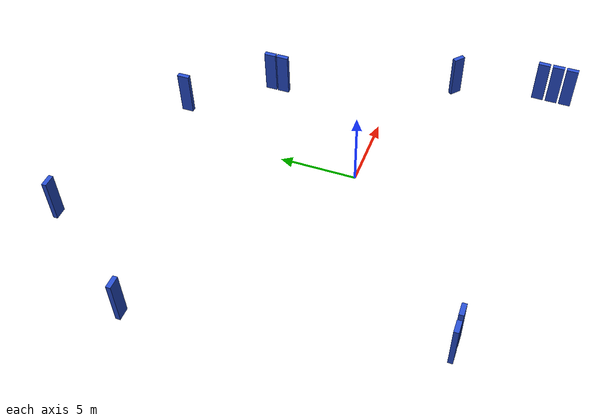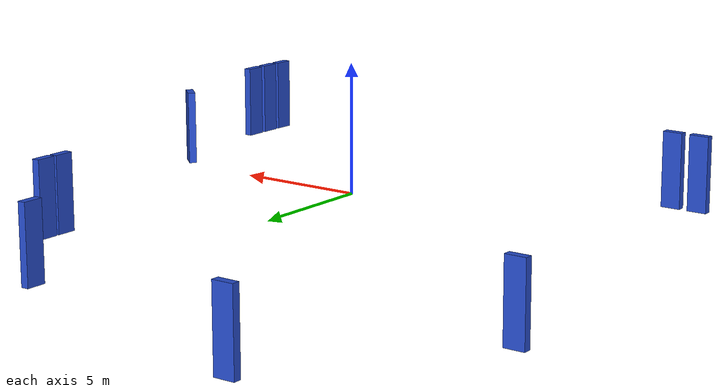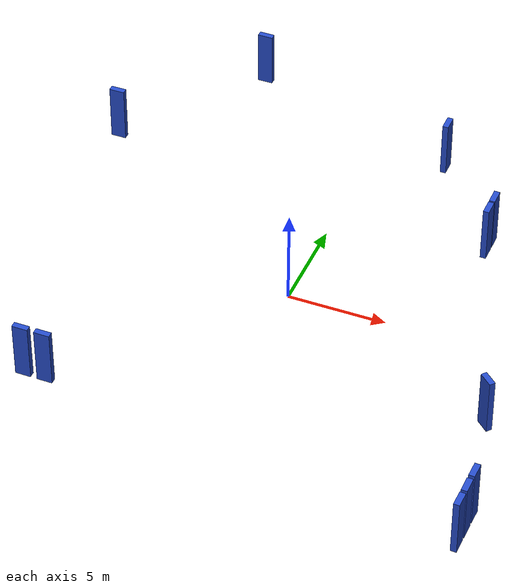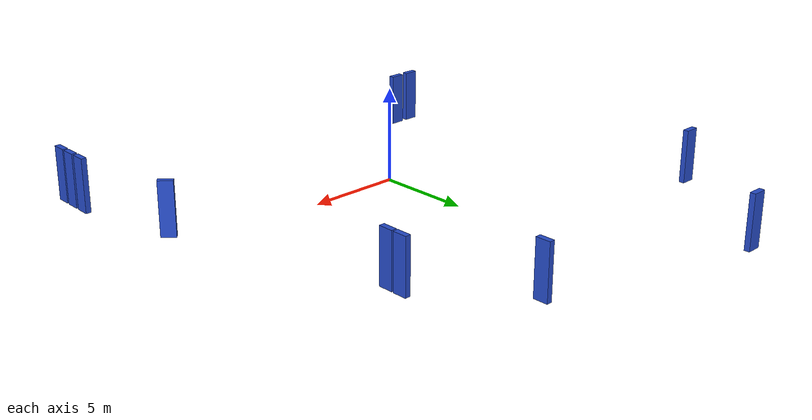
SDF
<sdf version="1.6">
 <world name="default">
  <model name="ground_plane">
   <static>1</static>
   <link name="link">
    <collision name="collision">
     <geometry><plane><normal>0 0 1</normal><size>100 100</size></plane></geometry>
     <surface>
      <contact><collide_bitmask>65535</collide_bitmask></contact>
      <friction><ode><mu>100</mu><mu2>50</mu2></ode></friction>
     </surface>
    </collision>
   </link>
  </model>
  <light name="sun" type="directional">
   <pose>0 0 10 0 -0 0</pose>
   <diffuse>0.8 0.8 0.8 1</diffuse>
   <specular>0.2 0.2 0.2 1</specular>
   <attenuation>
    <range>1000</range>
    <constant>0.9</constant>
    <linear>0.01</linear>
    <quadratic>0.001</quadratic>
   </attenuation>
   <direction>-0.5 0.1 -0.9</direction>
   <spot><inner_angle>0</inner_angle><outer_angle>0</outer_angle><falloff>0</falloff></spot>
  </light>
  <gravity>0 0 -9.8</gravity>
  <magnetic_field>6e-06 2.3e-05 -4.2e-05</magnetic_field>
  <atmosphere type="adiabatic"/>
  <physics type="ode">
   <max_step_size>0.001</max_step_size>
   <real_time_factor>1</real_time_factor>
   <real_time_update_rate>1000</real_time_update_rate>
  </physics>
  <scene><ambient>0.4 0.4 0.4 1</ambient><background>0.7 0.7 0.7 1</background><shadows>1</shadows></scene>
  <spherical_coordinates>
   <surface_model>EARTH_WGS84</surface_model>
   <latitude_deg>0</latitude_deg>
   <longitude_deg>0</longitude_deg>
   <elevation>0</elevation>
   <heading_deg>0</heading_deg>
  </spherical_coordinates>
  <model name="door_1">
   <static>1</static>
   <link name="chassis">
    <pose>0 0 0.5 0 -0 0</pose>
    <collision name="collision"><geometry><box><size>2 0.5 1</size></box></geometry></collision>
    <visual name="visual">
     <geometry><box><size>0.8 0.3 3</size></box></geometry>
     <material>
      <script><uri>file://media/materials/scripts/gazebo.material</uri><name>Gazebo/Blue</name></script>
     </material>
    </visual>
    <velocity_decay><linear>0</linear><angular>0</angular></velocity_decay>
   </link>
   <pose>-9.97173 -8.79552 0 0 -0 0</pose>
  </model>
  <model name="door_2">
   <static>1</static>
   <link name="chassis">
    <pose>0 0 0.5 0 -0 0</pose>
    <collision name="collision"><geometry><box><size>2 0.5 1</size></box></geometry></collision>
    <visual name="visual">
     <geometry><box><size>0.8 0.3 3</size></box></geometry>
     <material>
      <script><uri>file://media/materials/scripts/gazebo.material</uri><name>Gazebo/Blue</name></script>
     </material>
    </visual>
    <velocity_decay><linear>0</linear><angular>0</angular></velocity_decay>
   </link>
   <pose>-8.84263 -8.79272 0 0 -0 0</pose>
  </model>
  <model name="door_3">
   <static>1</static>
   <link name="chassis">
    <pose>0 0 0.5 0 -0 0</pose>
    <collision name="collision"><geometry><box><size>2 0.5 1</size></box></geometry></collision>
    <visual name="visual">
     <geometry><box><size>0.8 0.3 3</size></box></geometry>
     <material>
      <script><uri>file://media/materials/scripts/gazebo.material</uri><name>Gazebo/Blue</name></script>
     </material>
    </visual>
    <velocity_decay><linear>0</linear><angular>0</angular></velocity_decay>
   </link>
   <pose>-13.4092 9.3986 0 0 -0 0</pose>
  </model>
  <model name="door_4">
   <static>1</static>
   <link name="chassis">
    <pose>0 0 0.5 0 -0 0</pose>
    <collision name="collision"><geometry><box><size>2 0.5 1</size></box></geometry></collision>
    <visual name="visual">
     <geometry><box><size>0.8 0.3 3</size></box></geometry>
     <material>
      <script><uri>file://media/materials/scripts/gazebo.material</uri><name>Gazebo/Blue</name></script>
     </material>
    </visual>
    <velocity_decay><linear>0</linear><angular>0</angular></velocity_decay>
   </link>
   <pose>-8.08526 16.733 0 0 -0 0</pose>
  </model>
  <model name="door_5">
   <static>1</static>
   <link name="chassis">
    <pose>0 0 0.5 0 -0 0</pose>
    <collision name="collision"><geometry><box><size>2 0.5 1</size></box></geometry></collision>
    <visual name="visual">
     <geometry><box><size>0.8 0.3 3</size></box></geometry>
     <material>
      <script><uri>file://media/materials/scripts/gazebo.material</uri><name>Gazebo/Blue</name></script>
     </material>
    </visual>
    <velocity_decay><linear>0</linear><angular>0</angular></velocity_decay>
   </link>
   <pose>12.6939 -9.47423 0 0 0 -1.59684</pose>
  </model>
  <model name="door_6">
   <static>1</static>
   <link name="chassis">
    <pose>0 0 0.5 0 -0 0</pose>
    <collision name="collision"><geometry><box><size>2 0.5 1</size></box></geometry></collision>
    <visual name="visual">
     <geometry><box><size>0.8 0.3 3</size></box></geometry>
     <material>
      <script><uri>file://media/materials/scripts/gazebo.material</uri><name>Gazebo/Blue</name></script>
     </material>
    </visual>
    <velocity_decay><linear>0</linear><angular>0</angular></velocity_decay>
   </link>
   <pose>12.6777 -10.4464 0 0 0 -1.58107</pose>
  </model>
  <model name="door_7">
   <static>1</static>
   <link name="chassis">
    <pose>0 0 0.5 0 -0 0</pose>
    <collision name="collision"><geometry><box><size>2 0.5 1</size></box></geometry></collision>
    <visual name="visual">
     <geometry><box><size>0.8 0.3 3</size></box></geometry>
     <material>
      <script><uri>file://media/materials/scripts/gazebo.material</uri><name>Gazebo/Blue</name></script>
     </material>
    </visual>
    <velocity_decay><linear>0</linear><angular>0</angular></velocity_decay>
   </link>
   <pose>12.6584 -11.3865 0 0 0 -1.59289</pose>
  </model>
  <model name="door_8">
   <static>1</static>
   <link name="chassis">
    <pose>0 0 0.5 0 -0 0</pose>
    <collision name="collision"><geometry><box><size>2 0.5 1</size></box></geometry></collision>
    <visual name="visual">
     <geometry><box><size>0.8 0.3 3</size></box></geometry>
     <material>
      <script><uri>file://media/materials/scripts/gazebo.material</uri><name>Gazebo/Blue</name></script>
     </material>
    </visual>
    <velocity_decay><linear>0</linear><angular>0</angular></velocity_decay>
   </link>
   <pose>11.3705 -3.76243 0 0 0 -0.715421</pose>
  </model>
  <model name="door_9">
   <static>1</static>
   <link name="chassis">
    <pose>0 0 0.5 0 -0 0</pose>
    <collision name="collision"><geometry><box><size>2 0.5 1</size></box></geometry></collision>
    <visual name="visual">
     <geometry><box><size>0.8 0.3 3</size></box></geometry>
     <material>
      <script><uri>file://media/materials/scripts/gazebo.material</uri><name>Gazebo/Blue</name></script>
     </material>
    </visual>
    <velocity_decay><linear>0</linear><angular>0</angular></velocity_decay>
   </link>
   <pose>7.46799 7.78418 0 0 0 -1.57939</pose>
  </model>
  <model name="door_10">
   <static>1</static>
   <link name="chassis">
    <pose>0 0 0.5 0 -0 0</pose>
    <collision name="collision"><geometry><box><size>2 0.5 1</size></box></geometry></collision>
    <visual name="visual">
     <geometry><box><size>0.8 0.3 3</size></box></geometry>
     <material>
      <script><uri>file://media/materials/scripts/gazebo.material</uri><name>Gazebo/Blue</name></script>
     </material>
    </visual>
    <velocity_decay><linear>0</linear><angular>0</angular></velocity_decay>
   </link>
   <pose>7.4713 8.67612 0 0 0 -1.56766</pose>
  </model>
  <model name="door_11">
   <static>1</static>
   <link name="chassis">
    <pose>0 0 0.5 0 -0 0</pose>
    <collision name="collision"><geometry><box><size>2 0.5 1</size></box></geometry></collision>
    <visual name="visual">
     <geometry><box><size>0.8 0.3 3</size></box></geometry>
     <material>
      <script><uri>file://media/materials/scripts/gazebo.material</uri><name>Gazebo/Blue</name></script>
     </material>
    </visual>
    <velocity_decay><linear>0</linear><angular>0</angular></velocity_decay>
   </link>
   <pose>3.37516 13.3473 0 0 0 -1.56652</pose>
  </model>
 </world>
</sdf>
